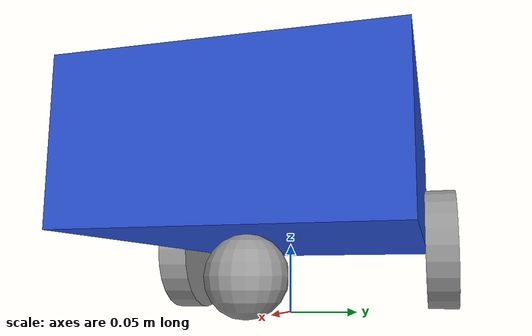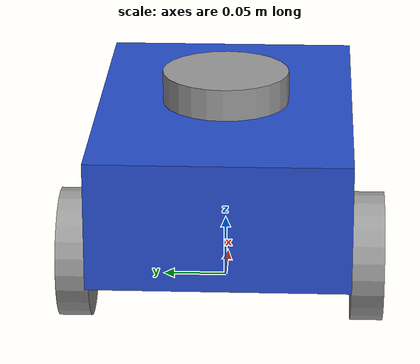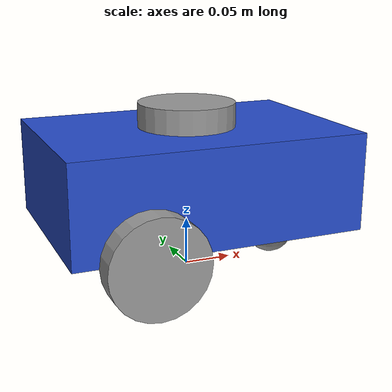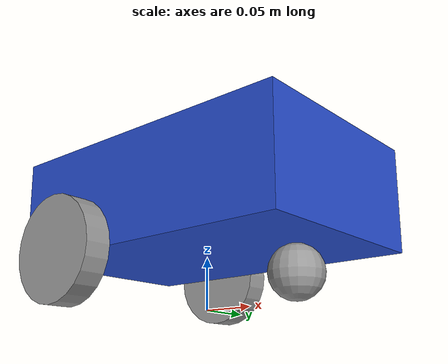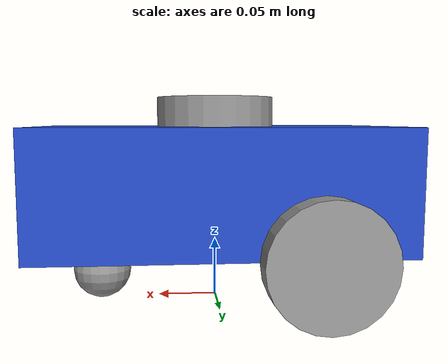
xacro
<?xml version="1.0"?>
<robot name="my_robot" xmlns:xacro="http://www.ros.org/wiki/xacro">

    <xacro:include filename="common_properties.xacro" /> <!--include common_prop first-->
    <xacro:include filename="mobile_base.xacro" />
    <xacro:include filename="mobile_base_gazebo.xacro" />
    <xacro:include filename="lidar.xacro" />

</robot>

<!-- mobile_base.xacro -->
<robot xmlns:xacro="http://www.ros.org/wiki/xacro">

    <xacro:property name="base_length" value="0.3" />
    <xacro:property name="base_width" value="0.2" />
    <xacro:property name="base_height" value="0.1" />
    <xacro:property name="wheel_radius" value="0.05" />
    <xacro:property name="wheel_length" value="0.025" />

    <link name="base_footprint" />

    <link name="base_link">
        <visual>
            <geometry>
                <box size="${base_length} ${base_width} ${base_height}" />
            </geometry>
            <origin xyz="0 0 ${base_height / 2.0}" rpy="0 0 0" />
            <material name="blue" />
        </visual>
        <collision>
            <geometry>
                <box size="${base_length} ${base_width} ${base_height}" />
            </geometry>
            <origin xyz="0 0 ${base_height / 2.0}" rpy="0 0 0" />
        </collision>
        <xacro:box_inertia m="3.0" l="${2*base_length}" w="${2*base_width}" h="${2*base_height}"
                           xyz="0 0 ${base_height / 2.0}" rpy="0 0 0" />
    </link>

    <xacro:macro name="wheel_link" params="prefix">
        <link name="${prefix}_wheel_link">
            <visual>
                <geometry>
                    <cylinder radius="${wheel_radius}" length="${wheel_length}" />
                </geometry>
                <origin xyz="0 0 0" rpy="${pi / 2.0} 0 0" />
                <material name="grey" />
            </visual>
            <collision>
                <geometry>
                    <cylinder radius="${wheel_radius}" length="${wheel_length}" />
                </geometry>
                <origin xyz="0 0 0" rpy="${pi / 2.0} 0 0" />
            </collision>
            <xacro:cylinder_inertia m="0.5" r="${2*wheel_radius}" h="${2*wheel_length}"
                                    xyz="0 0 0" rpy="${pi / 2.0} 0 0" />
        </link>
    </xacro:macro>

    <xacro:wheel_link prefix="right" />
    <xacro:wheel_link prefix="left" />

    <link name="caster_wheel_link">
        <visual>
            <geometry>
                <sphere radius="${wheel_radius / 2.0}" />
            </geometry>
            <origin xyz="0 0 0" rpy="0 0 0" />
            <material name="grey" />
        </visual>
        <collision>
            <geometry>
                <sphere radius="${wheel_radius / 2.0}" />
            </geometry>
            <origin xyz="0 0 0" rpy="0 0 0" />
        </collision>
        <xacro:sphere_inertia m="0.25" r="${2*wheel_radius / 2.0}"
                              xyz="0 0 0" rpy="0 0 0" />
    </link>

    <joint name="base_joint" type="fixed">
        <parent link="base_footprint" />
        <child link="base_link" />
        <origin xyz="0 0 ${wheel_radius}" rpy="0 0 0"/>
    </joint>

    <joint name="base_right_wheel_joint" type="continuous">
        <parent link="base_link" />
        <child link="right_wheel_link" />
        <origin xyz="${-base_length / 4.0} ${-(base_width + wheel_length) / 2.0} 0" rpy="0 0 0" />
        <axis xyz="0 1 0" />
    </joint>

    <joint name="base_left_wheel_joint" type="continuous">
        <parent link="base_link" />
        <child link="left_wheel_link" />
        <origin xyz="${-base_length / 4.0} ${(base_width + wheel_length) / 2.0} 0" rpy="0 0 0" />
        <axis xyz="0 1 0" />
    </joint>

    <joint name="base_caster_wheel_joint" type="fixed">
        <parent link="base_link" />
        <child link="caster_wheel_link" />
        <origin xyz="${base_length / 3.0} 0 ${-wheel_radius / 2.0}" rpy="0 0 0" />
    </joint>

</robot>

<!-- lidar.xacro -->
<robot xmlns:xacro="http://www.ros.org/wiki/xacro">

    <xacro:property name="lidar_length" value="0.025"/>
    <xacro:property name="lidar_radius" value="0.05" />

    <link name="base_scan_link">
        <visual>
            <geometry>
                <cylinder radius="${lidar_radius}" length="${lidar_length}"/>
            </geometry>
            <origin xyz="0 0 0" rpy="0 0 0" />
            <material name="grey" />
        </visual>
        <collision>
            <geometry>
                <cylinder radius="${lidar_radius}" length="${lidar_length}"/>
            </geometry>
        </collision>
        <xacro:cylinder_inertia m="0.05" r="${lidar_radius}" h="${lidar_length}"
                                xyz="0 0 0" rpy="0 0 0" />
    </link>

    <joint name="base_scan_joint" type="fixed">
        <parent link="base_link"/>
        <child link="base_scan_link"/>
        <origin xyz="0 0 ${base_height + lidar_length/2.0}" rpy="0 0 0"/>
    </joint>

    <gazebo reference="base_scan_link">
        <material>Gazebo/Red</material>
        <sensor name="lidar_sensor" type="lidar">
            <pose>0 0 0 0 0 0</pose> <!-- positon + orientation, origine of sensor relative to camera link-->
            <visualize>true</visualize> <!-- visualize lidar on Gazebo -->
            <update_rate>100.0</update_rate> <!-- rate (Hz) of Gazebo read data from sensor -->
            <ray>
                <scan>
                    <horizontal>
                        <samples>360</samples>
                        <min_angle>-3.14156</min_angle>
                        <max_angle>3.14156</max_angle>
                        <resolution>1</resolution>
                    </horizontal>
                </scan>
                <range>
                    <min>0.08</min>
                    <max>10</max>
                    <resolution>0.01</resolution>
                </range>
            </ray>
            <plugin name="my_ray_sensor_plugin" filename="libgazebo_ros_ray_sensor.so">
                <ros>
                    <argument>~/out:=scan</argument>
                </ros>
                <output_type>sensor_msgs/LaserScan</output_type>
                <frame_name>base_scan_link</frame_name>
            </plugin>
        </sensor>

    </gazebo>

</robot>
